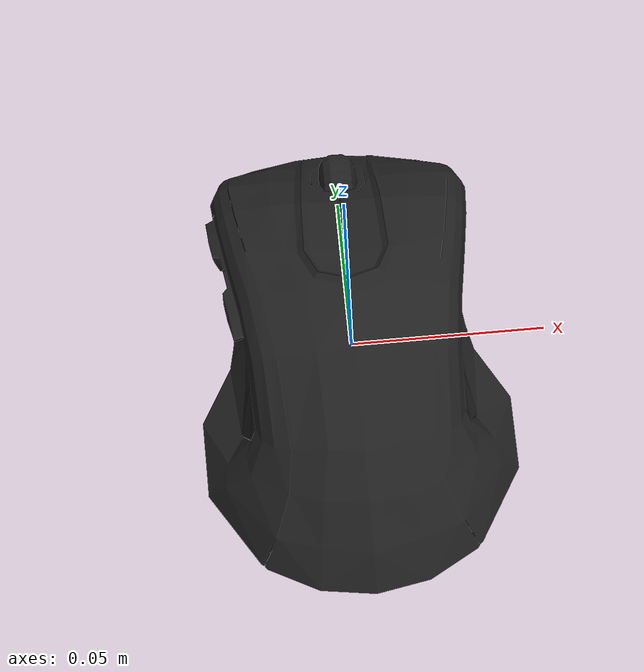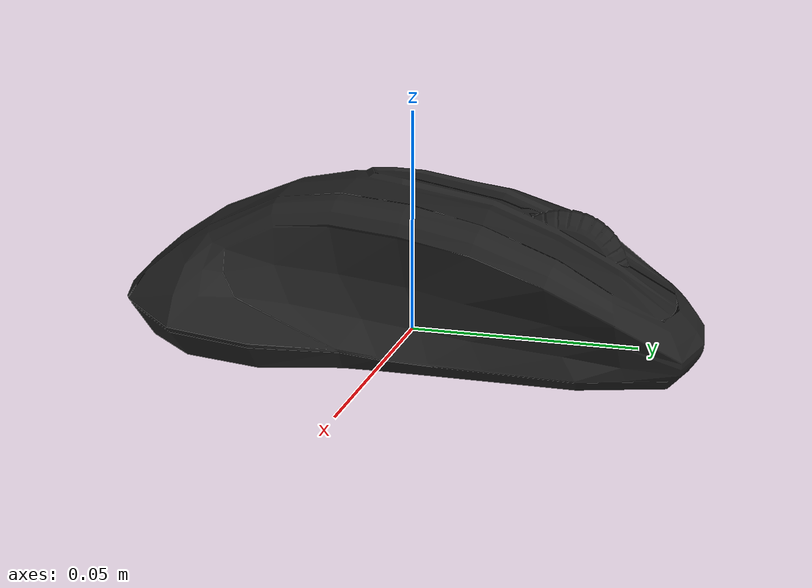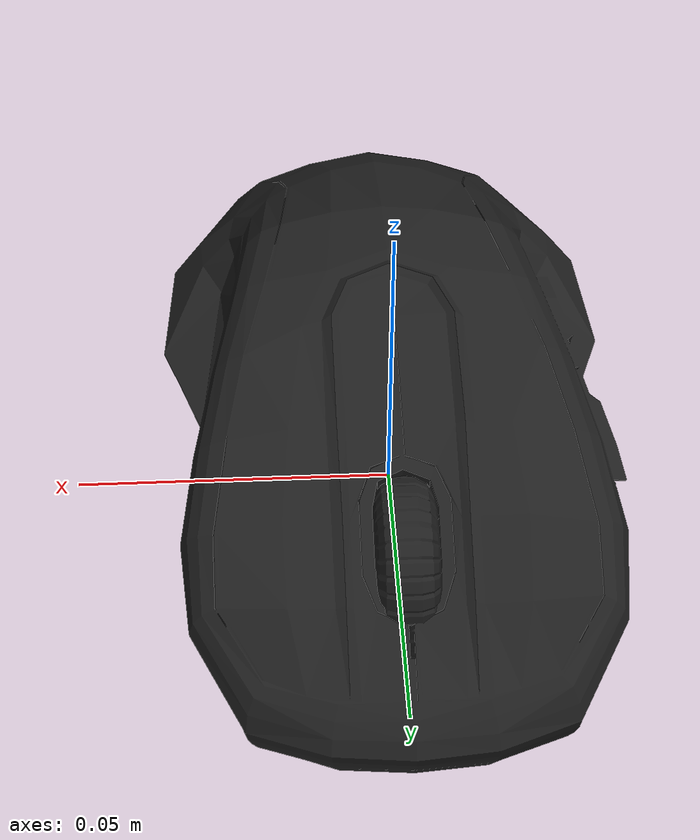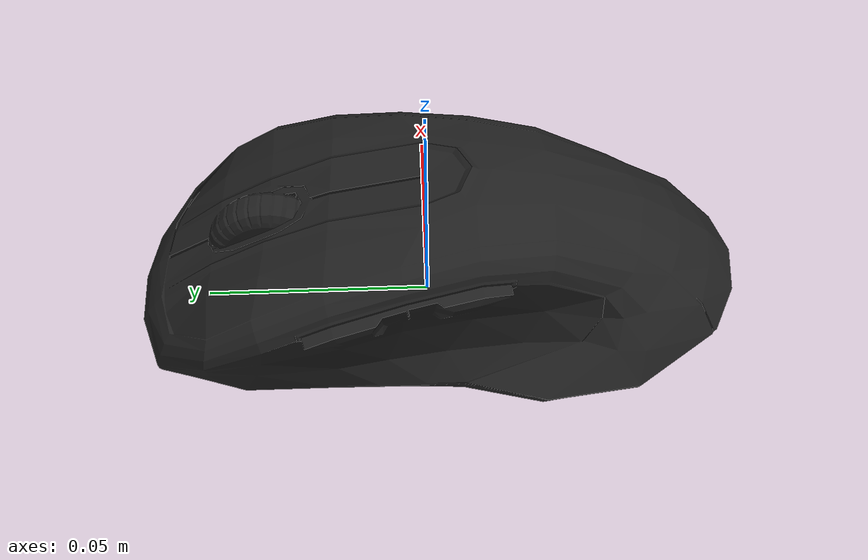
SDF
<?xml version='1.0'?>
<sdf version="1.4">
<model name="computer_mouse">
  <pose>0 0 0  0 0 0</pose>
  <static>true</static>
    <link name="link">

      <collision name="collision">
        <geometry>
          <mesh><uri>model://computer_mouse/model.dae</uri></mesh>
        </geometry>
      </collision>

      <visual name="visual">
        <geometry>
          <mesh><uri>model://computer_mouse/model.dae</uri></mesh>
        </geometry>

        <material>
          <script>
            <name>Gazebo/Black</name>
          </script>
        </material>

      </visual>
    </link>
  </model>
</sdf>
